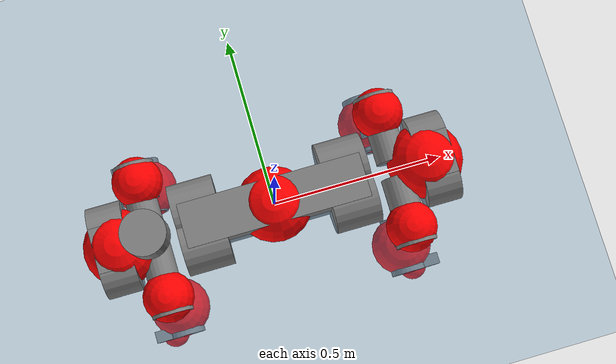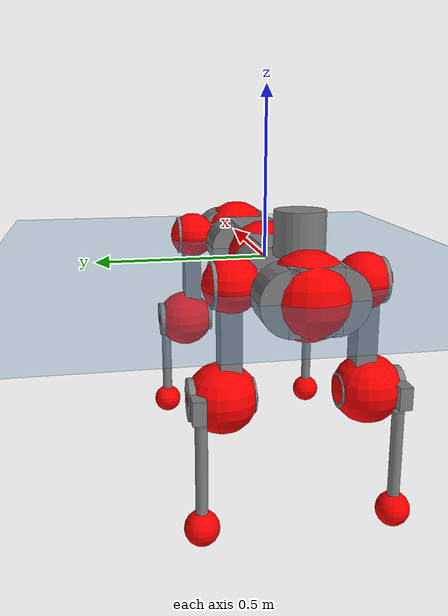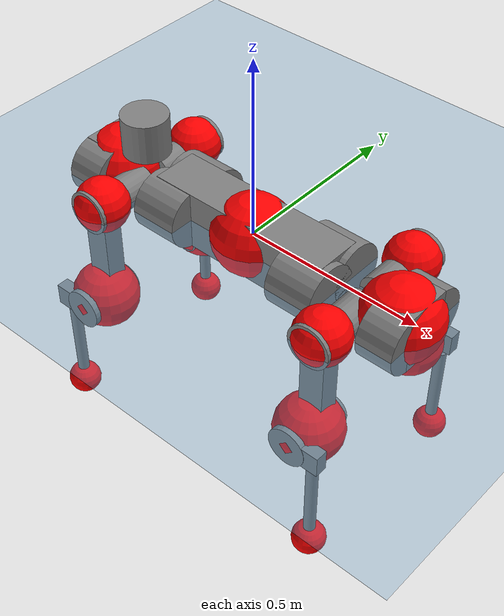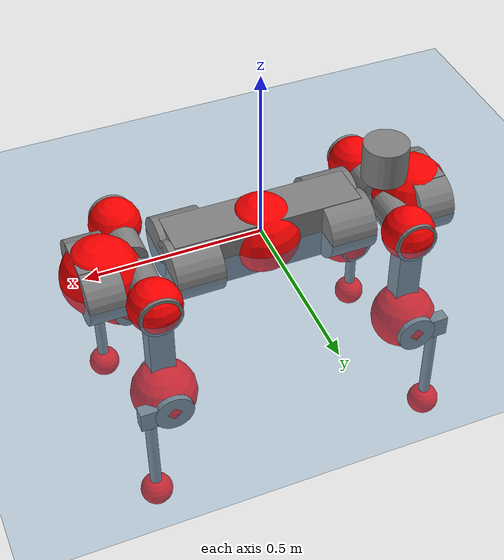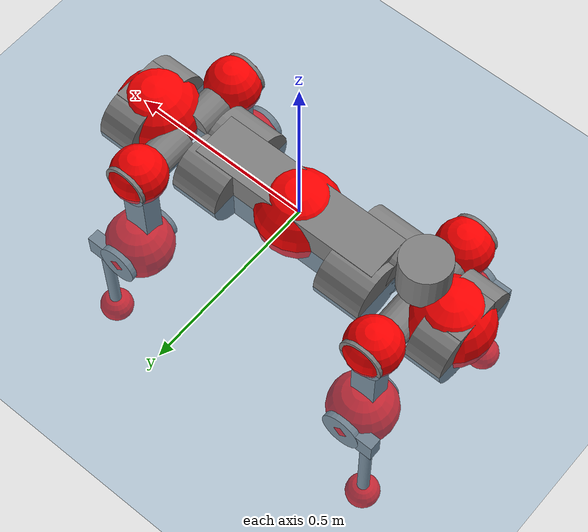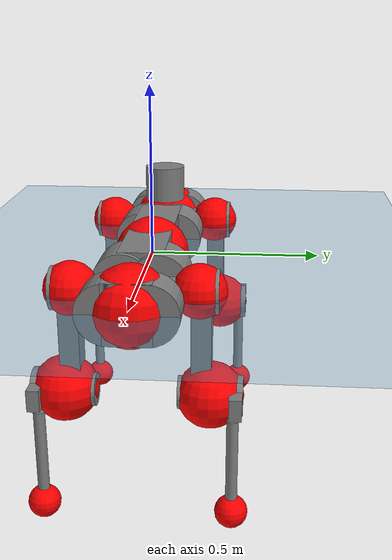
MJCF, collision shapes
<mujoco model="anymal_c">
  <compiler angle="radian" assetdir="assets" balanceinertia="true" inertiafromgeom="false"/>

  <option timestep="0.005" density="1.2" viscosity="2e-05"/>

  <size nkey="1"/>

  <visual>
    <quality shadowsize="8192"/>
    <map shadowclip="0.5"/>
  </visual>

  <default>
    <default class="/">
      <material specular="0" shininess="0.25"/>
      <geom contype="0" conaffinity="0" group="1" solref="-1000 -80"/>
      <site size="0.01 0.005 0.005" group="5"/>
      <general forcelimited="true" forcerange="-80 80" biastype="affine" gainprm="80" biasprm="0 -80 -2"/>
      <default class="anymal_c">
        <joint armature="0.01" damping="0.01" frictionloss="0.1"/>
        <default class="visual">
          <geom type="mesh" group="2"/>
          <default class="visual_zflip"/>
        </default>
        <default class="collision">
          <geom type="cylinder" group="3"/>
          <default class="foot">
            <geom size="0.03 0 0" type="sphere" condim="6" priority="1" friction="0.8 0.02 0.01" solimp="0.015 1 0.03"/>
          </default>
        </default>
      </default>
      <default class="reward_collision_sphere">
        <geom group="5" rgba="1 0 0 1"/>
      </default>
    </default>
  </default>

  <asset>
    <texture type="skybox" colorspace="auto" name="//unnamed_texture_0" builtin="gradient" rgb1="0.95 0.95 0.95" rgb2="0.95 0.95 0.95" width="100" height="600"/>
    <texture type="2d" colorspace="auto" name="texplane" builtin="checker" rgb1="0.345 0.575 0.748" rgb2="0.345 0.575 0.748" markrgb="1 1 1" width="512" height="512"/>
    <texture type="2d" colorspace="linear" name="base" file="base.png"/>
    <texture type="2d" colorspace="linear" name="top_shell" file="top_shell.png"/>
    <texture type="2d" colorspace="linear" name="bottom_shell" file="bottom_shell.png"/>
    <texture type="2d" colorspace="linear" name="remote" file="remote.png"/>
    <texture type="2d" colorspace="linear" name="hatch" file="hatch.png"/>
    <texture type="2d" colorspace="linear" name="handle" file="handle.png"/>
    <texture type="2d" colorspace="linear" name="face" file="face.png"/>
    <texture type="2d" colorspace="linear" name="battery" file="battery.png"/>
    <texture type="2d" colorspace="linear" name="lidar_cage" file="lidar_cage.png"/>
    <texture type="2d" colorspace="linear" name="depth_camera" file="depth_camera.png"/>
    <texture type="2d" colorspace="linear" name="wide_angle_camera" file="wide_angle_camera.png"/>
    <texture type="2d" colorspace="linear" name="lidar" file="lidar.png"/>
    <texture type="2d" colorspace="linear" name="drive" file="drive.png"/>
    <texture type="2d" colorspace="linear" name="hip_l" file="hip_l.png"/>
    <texture type="2d" colorspace="linear" name="shank_l" file="shank_l.png"/>
    <texture type="2d" colorspace="linear" name="foot" file="foot.png"/>
    <texture type="2d" colorspace="linear" name="thigh" file="thigh.png"/>
    <texture type="2d" colorspace="linear" name="shank_r" file="shank_r.png"/>
    <texture type="2d" colorspace="linear" name="hip_r" file="hip_r.png"/>
    <material name="MatPlane" class="/" texture="texplane" texuniform="true" texrepeat="2 2" specular="0.9" shininess="0.5"/>
    <material name="black_plastic" class="/" rgba="0.007 0.007 0.007 1"/>
    <material name="green" class="/" rgba="0.052 0.178 0.033 1"/>
    <material name="red" class="/" rgba="0.178 0.006 0.005 1"/>
    <material name="yellow" class="/" rgba="0.178 0.119 0.006 1"/>
    <material name="lwl" class="/" rgba="0.8 0.8 0.8 1"/>
    <material name="base" class="/" texture="base"/>
    <material name="top_shell" class="/" texture="top_shell"/>
    <material name="bottom_shell" class="/" texture="bottom_shell"/>
    <material name="hip_l" class="/" texture="hip_l"/>
    <material name="thigh" class="/" texture="thigh"/>
    <material name="shank_l" class="/" texture="shank_l"/>
    <material name="foot" class="/" texture="foot"/>
    <material name="hip_r" class="/" texture="hip_r"/>
    <material name="shank" class="/" texture="shank_r"/>
    <material name="hatch" class="/" texture="hatch"/>
    <material name="remote" class="/" texture="remote"/>
    <material name="handle" class="/" texture="handle"/>
    <material name="face" class="/" texture="face"/>
    <material name="depth_camera" class="/" texture="depth_camera"/>
    <material name="wide_angle_camera" class="/" texture="wide_angle_camera"/>
    <material name="battery" class="/" texture="battery"/>
    <material name="lidar_cage" class="/" texture="lidar_cage"/>
    <material name="lidar" class="/" texture="lidar"/>
    <material name="drive" class="/" texture="drive"/>
    <mesh name="base_0" class="/" file="base_0.obj"/>
    <mesh name="base_1" class="/" file="base_1.obj"/>
    <mesh name="base_2" class="/" file="base_2.obj"/>
    <mesh name="base_3" class="/" file="base_3.obj"/>
    <mesh name="base_4" class="/" file="base_4.obj"/>
    <mesh name="base_5" class="/" file="base_5.obj"/>
    <mesh name="top_shell" class="/" file="top_shell.obj"/>
    <mesh name="bottom_shell" class="/" file="bottom_shell.obj"/>
    <mesh name="remote" class="/" file="remote.obj"/>
    <mesh name="handle" class="/" file="handle.obj"/>
    <mesh name="face" class="/" file="face.obj"/>
    <mesh name="wide_angle_camera" class="/" file="wide_angle_camera.obj"/>
    <mesh name="depth_camera" class="/" file="depth_camera.obj"/>
    <mesh name="battery" class="/" file="battery.obj"/>
    <mesh name="lidar_cage" class="/" file="lidar_cage.obj"/>
    <mesh name="lidar" class="/" file="lidar.obj"/>
    <mesh name="drive" class="/" file="drive.obj"/>
    <mesh name="hip_l" class="/" file="hip_l.obj"/>
    <mesh name="thigh" class="/" file="thigh.obj"/>
    <mesh name="shank_l" class="/" file="shank_l.obj"/>
    <mesh name="foot" class="/" file="foot.obj"/>
    <mesh name="hip_r" class="/" file="hip_r.obj"/>
    <mesh name="hatch" class="/" file="hatch.obj"/>
    <mesh name="shank_r" class="/" file="shank_r.obj"/>
  </asset>

  <worldbody>
    <geom name="floor" class="/" size="100 100 0.125" type="plane" group="0" material="MatPlane"/>
    <light name="toplight_shadow" class="/" pos="0 0 5" dir="0.0990148 0.0990148 -0.990148" type="directional" ambient="0.04 0.04 0.04" diffuse="0.55 0.55 0.55" specular="0.12 0.12 0.12"/>
    <light name="toplight_fill" class="/" pos="0 0 5" dir="0.0990148 0.0990148 -0.990148" type="directional" castshadow="false" ambient="0.04 0.04 0.04" diffuse="0.3 0.3 0.3" specular="0.08 0.08 0.08"/>
    <body name="trunk" childclass="anymal_c" pos="-0.000869861 0.000318877 -0.00271189" quat="1 0.000309376 5.97266e-06 0.000407491">
      <inertial pos="-0.000464053 -0.00281878 0.0516191" quat="0.500435 0.499259 0.499526 0.500778" mass="15.6105" diaginertia="0.722403 0.138407 0.274407"/>
      <joint name="//unnamed_joint_0" type="free" armature="0" damping="0" frictionloss="0"/>
      <geom name="//unnamed_geom_1" class="visual" material="green" mesh="base_0"/>
      <geom name="//unnamed_geom_2" class="visual" material="yellow" mesh="base_1"/>
      <geom name="//unnamed_geom_3" class="visual" material="red" mesh="base_2"/>
      <geom name="//unnamed_geom_4" class="visual" material="black_plastic" mesh="base_3"/>
      <geom name="//unnamed_geom_5" class="visual" material="lwl" mesh="base_4"/>
      <geom name="//unnamed_geom_6" class="visual" material="base" mesh="base_5"/>
      <geom name="trunk_1" class="collision" size="0.2695 0.0650517 0.083638" type="box"/>
      <geom name="trunk_2" class="collision" size="0.083638 0.067375" pos="0.220863 0.0514558 0" quat="0.707107 0 0.707107 0"/>
      <geom name="trunk_3" class="collision" size="0.083638 0.067375" pos="-0.220863 0.0514558 0" quat="0.707107 0 0.707107 0"/>
      <geom name="trunk_4" class="collision" size="0.083638 0.067375" pos="0.220863 -0.0514558 0" quat="0.707107 0 0.707107 0"/>
      <geom name="trunk_5" class="collision" size="0.083638 0.067375" pos="-0.220863 -0.0514558 0" quat="0.707107 0 0.707107 0"/>
      <geom name="//unnamed_geom_12" class="visual" material="top_shell" mesh="top_shell"/>
      <geom name="//unnamed_geom_13" class="visual" material="bottom_shell" mesh="bottom_shell"/>
      <geom name="//unnamed_geom_14" class="visual" material="remote" mesh="remote"/>
      <geom name="//unnamed_geom_15" class="visual" material="handle" mesh="handle"/>
      <geom name="//unnamed_geom_16" class="visual" pos="0.420909 0 0" quat="1 0 0 0" material="face" mesh="face"/>
      <geom name="trunk_6" class="collision" size="0.0511121 0.0650517 0.083638" pos="0.47676 0 0" type="box"/>
      <geom name="//unnamed_geom_18" class="collision" size="0.083638 0.0511121" pos="0.47676 0.0514558 0" quat="0.707107 0 0.707107 0"/>
      <geom name="//unnamed_geom_19" class="collision" size="0.083638 0.0511121" pos="0.47676 -0.0514558 0" quat="0.707107 0 0.707107 0"/>
      <geom name="//unnamed_geom_20" class="visual" pos="0.468789 0 -0.0304583" quat="0.965926 0 0.258819 0" material="depth_camera" mesh="depth_camera"/>
      <geom name="//unnamed_geom_21" class="visual" pos="0.520933 0 0.0155297" material="wide_angle_camera" mesh="wide_angle_camera"/>
      <geom name="//unnamed_geom_22" class="visual_zflip" pos="-0.420909 0 0" quat="0 0 0 1" material="face" mesh="face"/>
      <geom name="trunk_7" class="collision" size="0.0511121 0.0650517 0.083638" pos="-0.47676 0 0" quat="0 0 0 1" type="box"/>
      <geom name="//unnamed_geom_24" class="collision" size="0.083638 0.0511121" pos="-0.47676 -0.0514558 0" quat="0 -0.707107 0 0.707107"/>
      <geom name="//unnamed_geom_25" class="collision" size="0.083638 0.0511121" pos="-0.47676 0.0514558 0" quat="0 -0.707107 0 0.707107"/>
      <geom name="//unnamed_geom_26" class="visual" pos="-0.468789 0 -0.0304583" quat="0 -0.258819 0 0.965926" material="depth_camera" mesh="depth_camera"/>
      <geom name="//unnamed_geom_27" class="visual_zflip" pos="-0.520933 0 0.0155297" quat="0 0 0 1" material="wide_angle_camera" mesh="wide_angle_camera"/>
      <geom name="//unnamed_geom_28" class="visual" material="battery" mesh="battery"/>
      <geom name="//unnamed_geom_29" class="visual" pos="0 0.0525262 0.0299694" quat="0.683013 -0.183013 0.183013 0.683013" material="depth_camera" mesh="depth_camera"/>
      <geom name="//unnamed_geom_30" class="visual" pos="0 -0.0525262 0.0299694" quat="0.683013 0.183013 0.183013 -0.683013" material="depth_camera" mesh="depth_camera"/>
      <geom name="//unnamed_geom_31" class="visual" pos="-0.369629 0 0.0762479" quat="1 0 0 0" material="lidar_cage" mesh="lidar_cage"/>
      <geom name="trunk_8" class="collision" size="0.0650517 0.0557586" pos="-0.369629 0 0.138491"/>
      <geom name="//unnamed_geom_33" class="visual" pos="-0.369629 -0.000110154 0.147516" quat="0.707107 0 0 -0.707107" material="lidar" mesh="lidar"/>
      <geom name="//unnamed_geom_34" class="visual" pos="0.304537 0.076556 -5.21476e-09" quat="0.258819 0.965926 0 0" material="drive" mesh="drive"/>
      <geom name="//unnamed_geom_35" class="visual" pos="0.304537 -0.076556 5.21476e-09" quat="0.258819 -0.965926 0 0" material="drive" mesh="drive"/>
      <geom name="//unnamed_geom_36" class="visual" pos="-0.304537 0.076556 5.21476e-09" quat="0 0 0.965926 -0.258819" material="drive" mesh="drive"/>
      <geom name="//unnamed_geom_37" class="visual" pos="-0.304537 -0.076556 -5.21476e-09" quat="0 0 -0.965926 -0.258819" material="drive" mesh="drive"/>
      <geom name="//unnamed_geom_38" class="visual" pos="0.117794 0 0.0757292" quat="1 0 0 0" material="hatch" mesh="hatch"/>
      <geom name="//unnamed_geom_39" class="reward_collision_sphere" size="0.111517"/>
      <geom name="//unnamed_geom_40" class="reward_collision_sphere" size="0.111517" pos="0.456958 0 0"/>
      <geom name="//unnamed_geom_41" class="reward_collision_sphere" size="0.111517" pos="-0.456958 0 0"/>
      <site name="imu" pos="0.242298 0.0114799 0.0614745" size="0.00929311"/>
      <camera name="track" pos="0 -1.47017 0" quat="0.707107 0.707107 0 0" mode="trackcom"/>
      <camera name="ego_camera" pos="0.456958 0 -0.0414954" quat="-0.5 -0.5 0.5 0.5"/>
      <body name="LF_HIP" pos="0.304058 0.0772503 -0.000113737" quat="0.259013 0.965873 0.000329855 0.000963634">
        <inertial pos="0.0602111 -0.012774 -0.00767029" quat="-0.126797 0.70985 -0.146881 0.677097" mass="2.16305" diaginertia="0.00613682 0.00104993 0.00398041"/>
        <joint name="LF_HAA" pos="0 0 0" axis="0.999861 0.00906448 0.0140147" range="-0.707 0.529889" armature="0.0104032" damping="0.00101292" frictionloss="0.0970484"/>
        <geom name="//unnamed_geom_42" class="visual" pos="0 -0.000306761 5.03852e-05" quat="0.258819 -0.965926 0 0" material="hip_l" mesh="hip_l"/>
        <geom name="//unnamed_geom_43" class="visual" pos="0.0608262 -0.0701197 -0.0427196" quat="0.183013 -0.683013 0.683013 0.183013" material="drive" mesh="drive"/>
        <geom name="//unnamed_geom_44" class="collision" size="0.0464655 0.0650517" pos="0.0608262 -0.00879144 -0.00716315" quat="-0.353553 -0.612372 0.612372 -0.353553"/>
        <body name="LF_THIGH" pos="0.0610043 -0.0534998 -0.0443703" quat="0.182953 -0.682665 0.683481 0.182622">
          <inertial pos="0.0331476 0.000449642 -0.252262" quat="0.993179 -0.00541832 -0.080492 0.0841858" mass="2.52424" diaginertia="0.0314232 0.00638727 0.00505618"/>
          <joint name="LF_HFE" pos="0 0 0" axis="0.999907 -0.00503061 0.0126776" stiffness="0.000138309" range="-3.14296 3.1203" armature="0.00887452" damping="0.00730281" frictionloss="0.0804602"/>
          <geom name="//unnamed_geom_45" class="visual" pos="0.00557846 8.79035e-06 0" quat="0.707107 0 0 -0.707107" material="thigh" mesh="thigh"/>
          <geom name="//unnamed_geom_46" class="collision" size="0.0604052 0.0371724" pos="0.0406185 0 0" quat="0.5 0.5 -0.5 -0.5"/>
          <geom name="//unnamed_geom_47" class="collision" size="0.0348491 0.0278793 0.131325" pos="0.0304639 0 -0.146597" quat="0.707107 0 0 -0.707107" type="box"/>
          <geom name="//unnamed_geom_48" class="visual" pos="0.101851 0 -0.295655" quat="1 0 0 0" material="drive" mesh="drive"/>
          <geom name="//unnamed_geom_49" class="collision" size="0.0464655 0.0650517" pos="0.0307685 0 -0.295655" quat="0.707107 0 0.707107 0"/>
          <geom name="//unnamed_geom_50" class="reward_collision_sphere" size="0.0743449" pos="0.0253866 0 0"/>
          <body name="LF_SHANK" pos="0.105313 -0.00335252 -0.29808" quat="0.999999 0.00108465 0.000894835 -0.000382753">
            <inertial pos="0.00610443 -0.0449746 -0.0833336" quat="0.992923 -0.115978 -0.00231125 -0.0254456" mass="0.460069" diaginertia="0.0106743 0.00197209 0.00131913"/>
            <joint name="LF_KFE" pos="0 0 0" axis="0.999997 0.00146485 -0.00178718" stiffness="0.000604316" range="-3.19337 3.157" armature="0.0102053" damping="0" frictionloss="0.104642"/>
            <geom name="//unnamed_geom_51" class="visual" pos="0.00181901 0.00969908 0" quat="0.707107 0 0 -0.707107" material="shank_l" mesh="shank_l"/>
            <geom name="LF_kfe_act" class="collision" size="0.0557586 0.0185862" pos="0.0203093 0 0" quat="0.5 0.5 -0.5 -0.5"/>
            <geom name="//unnamed_geom_53" class="collision" size="0.0534344 0.0313642 0.0176569" pos="0.0203093 -0.0422665 0" quat="0.5 0.5 -0.5 -0.5" type="box"/>
            <geom name="//unnamed_geom_54" class="visual" pos="0.0132514 -0.0615249 -0.350605" quat="0.382683 0 0 -0.92388" material="foot" mesh="foot"/>
            <geom name="LF_calf" class="collision" size="0.0162629 0.131267" pos="0.0132518 -0.0646505 -0.175303" quat="0.707107 0 0 -0.707107"/>
            <geom name="LF_foot" class="foot" size="0.0281439" pos="0.0132518 -0.0646505 -0.327264" quat="0.707107 0 0 -0.707107"/>
            <geom name="//unnamed_geom_57" class="reward_collision_sphere" size="0.0929311" pos="-0.0507732 0 0"/>
            <geom name="//unnamed_geom_58" class="reward_collision_sphere" size="0.0464655" pos="0.0132518 -0.0646505 -0.327264"/>
            <site name="LF_foot" class="foot" pos="0.0132518 -0.0646505 -0.327264" quat="0.707107 0 0 -0.707107" size="0.00929311"/>
          </body>
        </body>
      </body>
      <body name="RF_HIP" pos="0.30273 -0.0779225 -0.00112974" quat="0.258838 -0.965921 -2.04412e-05 -0.000113373">
        <inertial pos="0.0603597 0.0127846 -0.00954637" quat="0.137162 0.677581 0.127645 0.71118" mass="2.30961" diaginertia="0.00640269 0.0011194 0.00406961"/>
        <joint name="RF_HAA" pos="0 0 0" axis="0.99998 -0.00261958 -0.00575674" range="-0.543922 0.703037" armature="0.00808278" damping="0.00777243" frictionloss="0.0805288"/>
        <geom name="//unnamed_geom_59" class="visual" pos="0 0.000306758 5.03851e-05" quat="0.258819 0.965926 0 0" material="hip_r" mesh="hip_r"/>
        <geom name="//unnamed_geom_60" class="visual" pos="0.0608262 0.0701197 -0.0427196" quat="0.183013 0.683013 0.683013 -0.183013" material="drive" mesh="drive"/>
        <geom name="//unnamed_geom_61" class="collision" size="0.0464655 0.0650517" pos="0.0608262 0.00879144 -0.00716315" quat="-0.353553 0.612372 0.612372 0.353553"/>
        <body name="RF_THIGH" pos="0.0599087 0.0559684 -0.0457713" quat="0.182964 0.6831 0.682997 -0.182792">
          <inertial pos="0.0317119 -0.00112239 -0.253575" quat="0.991407 -0.0136999 -0.0852571 0.0982642" mass="2.30586" diaginertia="0.0311551 0.00638633 0.00495085"/>
          <joint name="RF_HFE" pos="0 0 0" axis="0.999949 -0.00497695 -0.00878486" stiffness="0.00516738" range="-3.10017 3.19382" armature="0.00933827" damping="0" frictionloss="0.100553"/>
          <geom name="//unnamed_geom_62" class="visual" pos="0.00557846 8.79035e-06 0" quat="0.707107 0 0 -0.707107" material="thigh" mesh="thigh"/>
          <geom name="//unnamed_geom_63" class="collision" size="0.0604052 0.0371724" pos="0.0406185 0 0" quat="0.5 0.5 0.5 0.5"/>
          <geom name="//unnamed_geom_64" class="collision" size="0.0348491 0.0278793 0.131325" pos="0.0304639 0 -0.146597" quat="0.707107 0 0 0.707107" type="box"/>
          <geom name="//unnamed_geom_65" class="visual" pos="0.101851 0 -0.295655" quat="1 0 0 0" material="drive" mesh="drive"/>
          <geom name="//unnamed_geom_66" class="collision" size="0.0464655 0.0650517" pos="0.0307685 0 -0.295655" quat="0.707107 0 0.707107 0"/>
          <geom name="//unnamed_geom_67" class="reward_collision_sphere" size="0.0743449" pos="0.0253866 0 0"/>
          <body name="RF_SHANK" pos="0.103952 -0.00208438 -0.294271" quat="1 4.55779e-05 0.000328226 8.28503e-05">
            <inertial pos="0.00537099 0.0454166 -0.0809643" quat="0.992009 0.124578 0.00376673 0.019613" mass="0.479966" diaginertia="0.0107095 0.00191921 0.00134283"/>
            <joint name="RF_KFE" pos="0 0 0" axis="0.99999 -0.00394884 0.00229723" range="-3.17767 3.18576" armature="0.00913392" damping="0.00288315" frictionloss="0.0822922"/>
            <geom name="//unnamed_geom_68" class="visual" pos="0.001819 -0.00969906 0" quat="0.707107 0 0 0.707107" material="shank" mesh="shank_r"/>
            <geom name="RF_kfe_act" class="collision" size="0.0557586 0.0185862" pos="0.0203093 0 0" quat="0.5 0.5 0.5 0.5"/>
            <geom name="//unnamed_geom_70" class="collision" size="0.0534344 0.0313642 0.0176569" pos="0.0203093 0.0422665 0" quat="0.5 0.5 0.5 0.5" type="box"/>
            <geom name="//unnamed_geom_71" class="visual" pos="0.0132522 0.0615249 -0.350605" quat="0.382683 0 0 0.92388" material="foot" mesh="foot"/>
            <geom name="RF_calf" class="collision" size="0.0162629 0.131267" pos="0.0132518 0.0646505 -0.175303" quat="0.707107 0 0 0.707107"/>
            <geom name="RF_foot" class="foot" size="0.0268643" pos="0.0132518 0.0646505 -0.327264" quat="0.707107 0 0 0.707107"/>
            <geom name="//unnamed_geom_74" class="reward_collision_sphere" size="0.0929311" pos="-0.0507732 0 0"/>
            <geom name="//unnamed_geom_75" class="reward_collision_sphere" size="0.0464655" pos="0.0132518 0.0646505 -0.327264"/>
            <site name="RF_foot" class="foot" pos="0.0132518 0.0646505 -0.327264" quat="0.707107 0 0 0.707107" size="0.00929311"/>
          </body>
        </body>
      </body>
      <body name="LH_HIP" pos="-0.306399 0.0780707 0.000318287" quat="1.54657e-05 8.83321e-06 0.965928 -0.25881">
        <inertial pos="0.0592325 0.0135904 -0.00902942" quat="0.13243 0.67064 0.129477 0.71829" mass="2.22963" diaginertia="0.00605884 0.00104804 0.00368777"/>
        <joint name="LH_HAA" pos="0 0 0" axis="0.999986 -0.00483688 -0.00228736" range="-0.478457 0.689887" armature="0.00792817" damping="0.000144598" frictionloss="0.0934208"/>
        <geom name="//unnamed_geom_76" class="visual" pos="0 0.000306758 5.03851e-05" quat="-0.258819 -0.965926 0 0" material="hip_r" mesh="hip_r"/>
        <geom name="//unnamed_geom_77" class="visual" pos="0.0608262 0.0701197 -0.0427196" quat="0.183013 0.683013 0.683013 -0.183013" material="drive" mesh="drive"/>
        <geom name="//unnamed_geom_78" class="collision" size="0.0464655 0.0650517" pos="0.0608262 0.00879144 -0.00716315" quat="-0.353553 0.612372 0.612372 0.353553"/>
        <body name="LH_THIGH" pos="0.0574993 0.0513987 -0.0439045" quat="0.182912 0.68299 0.683033 -0.183121">
          <inertial pos="0.0313844 0.00269616 -0.253605" quat="0.992467 -0.00808644 -0.0829051 0.0898355" mass="2.45341" diaginertia="0.0326154 0.00621023 0.00502977"/>
          <joint name="LH_HFE" pos="0 0 0" axis="0.999928 -0.00878566 -0.00813112" stiffness="0.00727239" range="-3.1381 3.15974" armature="0.00839822" damping="0.000489204" frictionloss="0.096204"/>
          <geom name="//unnamed_geom_79" class="visual" pos="0.00557846 8.79035e-06 0" quat="0.707107 0 0 -0.707107" material="thigh" mesh="thigh"/>
          <geom name="//unnamed_geom_80" class="collision" size="0.0604052 0.0371724" pos="0.0406185 0 0" quat="0.5 0.5 -0.5 -0.5"/>
          <geom name="//unnamed_geom_81" class="collision" size="0.0348491 0.0278793 0.131325" pos="0.0304639 0 -0.146597" quat="0.707107 0 0 -0.707107" type="box"/>
          <geom name="//unnamed_geom_82" class="visual" pos="0.101851 0 -0.295655" quat="1 0 0 0" material="drive" mesh="drive"/>
          <geom name="//unnamed_geom_83" class="collision" size="0.0464655 0.0650517" pos="0.0307685 0 -0.295655" quat="0.707107 0 0.707107 0"/>
          <geom name="//unnamed_geom_84" class="reward_collision_sphere" size="0.0743449" pos="0.0253866 0 0"/>
          <body name="LH_SHANK" pos="0.0989092 -0.000734201 -0.297161" quat="1 0.000688186 -0.000370935 -0.000149826">
            <inertial pos="0.0056451 0.0447015 -0.0839741" quat="0.992619 0.116493 0.000888514 0.0337178" mass="0.474811" diaginertia="0.0109387 0.0019639 0.00131548"/>
            <joint name="LH_KFE" pos="0 0 0" axis="0.999773 0.0142389 -0.0158672" range="-3.15925 3.14079" armature="0.00809662" damping="0.00646205" frictionloss="0.105024"/>
            <geom name="//unnamed_geom_85" class="visual" pos="0.001819 -0.00969906 0" quat="-0.707107 0 0 -0.707107" material="shank" mesh="shank_r"/>
            <geom name="LH_kfe_act" class="collision" size="0.0557586 0.0185862" pos="0.0203093 0 0" quat="0.5 0.5 -0.5 -0.5"/>
            <geom name="//unnamed_geom_87" class="collision" size="0.0534344 0.0313642 0.0176569" pos="0.0203093 0.0422665 0" quat="0.5 0.5 -0.5 -0.5" type="box"/>
            <geom name="//unnamed_geom_88" class="visual" pos="0.0132522 0.0615249 -0.350605" quat="-0.382683 0 0 -0.92388" material="foot" mesh="foot"/>
            <geom name="LH_calf" class="collision" size="0.0162629 0.131267" pos="0.0132518 0.0646505 -0.175303" quat="0.707107 0 0 -0.707107"/>
            <geom name="LH_foot" class="foot" size="0.0320233" pos="0.0132518 0.0646505 -0.327264" quat="0.707107 0 0 -0.707107"/>
            <geom name="//unnamed_geom_91" class="reward_collision_sphere" size="0.0929311" pos="-0.0507732 0 0"/>
            <geom name="//unnamed_geom_92" class="reward_collision_sphere" size="0.0464655" pos="0.0132518 0.0646505 -0.327264"/>
            <site name="LH_foot" class="foot" pos="0.0132518 0.0646505 -0.327264" quat="0.707107 0 0 -0.707107" size="0.00929311"/>
          </body>
        </body>
      </body>
      <body name="RH_HIP" pos="-0.304417 -0.0794821 -0.000648956" quat="0.000571002 0.000978043 -0.966111 -0.258125">
        <inertial pos="0.0550119 -0.0118484 -0.0060912" quat="-0.127518 0.709819 -0.135277 0.679409" mass="2.18165" diaginertia="0.00620276 0.0010283 0.00375013"/>
        <joint name="RH_HAA" pos="0 0 0" axis="0.999998 0.00156737 0.00115127" range="-0.77902 0.53592" armature="0.00917899" damping="0" frictionloss="0.0931981"/>
        <geom name="//unnamed_geom_93" class="visual" pos="0 -0.000306761 5.03852e-05" quat="-0.258819 0.965926 0 0" material="hip_l" mesh="hip_l"/>
        <geom name="//unnamed_geom_94" class="visual" pos="0.0608262 -0.0701197 -0.0427196" quat="-0.183013 0.683013 -0.683013 -0.183013" material="drive" mesh="drive"/>
        <geom name="//unnamed_geom_95" class="collision" size="0.0464655 0.0650517" pos="0.0608262 -0.00879144 -0.00716315" quat="0.353553 0.612372 -0.612372 0.353553"/>
        <body name="RH_THIGH" pos="0.059915 -0.0549868 -0.0420417" quat="-0.183063 0.683211 -0.682791 -0.183051">
          <inertial pos="0.0344374 0.000400924 -0.255685" quat="0.993216 -0.00523524 -0.0800657 0.084162" mass="2.34084" diaginertia="0.0308122 0.00627361 0.00487359"/>
          <joint name="RH_HFE" pos="0 0 0" axis="0.999941 -0.0051411 -0.00959201" stiffness="0.00201172" range="-3.15028 3.14801" armature="0.00875004" damping="0.00412112" frictionloss="0.093956"/>
          <geom name="//unnamed_geom_96" class="visual" pos="0.00557846 8.79035e-06 0" quat="0.707107 0 0 -0.707107" material="thigh" mesh="thigh"/>
          <geom name="//unnamed_geom_97" class="collision" size="0.0604052 0.0371724" pos="0.0406185 0 0" quat="0.5 0.5 0.5 0.5"/>
          <geom name="//unnamed_geom_98" class="collision" size="0.0348491 0.0278793 0.131325" pos="0.0304639 0 -0.146597" quat="0.707107 0 0 0.707107" type="box"/>
          <geom name="//unnamed_geom_99" class="visual" pos="0.101851 0 -0.295655" quat="1 0 0 0" material="drive" mesh="drive"/>
          <geom name="//unnamed_geom_100" class="collision" size="0.0464655 0.0650517" pos="0.0307685 0 -0.295655" quat="0.707107 0 0.707107 0"/>
          <geom name="//unnamed_geom_101" class="reward_collision_sphere" size="0.0743449" pos="0.0253866 0 0"/>
          <body name="RH_SHANK" pos="0.0993153 0.00131206 -0.294904" quat="1 8.6568e-06 0.000244345 -0.000741602">
            <inertial pos="0.00470913 -0.04506 -0.0841364" quat="0.993636 -0.108509 -0.0126476 -0.0274558" mass="0.461773" diaginertia="0.0105713 0.00203329 0.00133172"/>
            <joint name="RH_KFE" pos="0 0 0" axis="0.999982 -0.00261371 0.00541191" stiffness="0.00951157" range="-3.10826 3.12801" armature="0.00823989" damping="0.00812616" frictionloss="0.0922878"/>
            <geom name="//unnamed_geom_102" class="visual" pos="0.00181901 0.00969908 0" quat="0.707107 0 0 -0.707107" material="shank_l" mesh="shank_l"/>
            <geom name="RH_kfe_act" class="collision" size="0.0557586 0.0185862" pos="0.0203093 0 0" quat="0.5 0.5 0.5 0.5"/>
            <geom name="//unnamed_geom_104" class="collision" size="0.0534344 0.0313642 0.0176569" pos="0.0203093 -0.0422665 0" quat="0.5 0.5 0.5 0.5" type="box"/>
            <geom name="//unnamed_geom_105" class="visual" pos="0.0132514 -0.0615249 -0.350605" quat="0.382683 0 0 -0.92388" material="foot" mesh="foot"/>
            <geom name="RH_calf" class="collision" size="0.0162629 0.131267" pos="0.0132518 -0.0646505 -0.175303" quat="0.707107 0 0 0.707107"/>
            <geom name="RH_foot" class="foot" size="0.0231774" pos="0.0132518 -0.0646505 -0.327264" quat="0.707107 0 0 0.707107"/>
            <geom name="//unnamed_geom_108" class="reward_collision_sphere" size="0.0929311" pos="-0.0507732 0 0"/>
            <geom name="//unnamed_geom_109" class="reward_collision_sphere" size="0.0464655" pos="0.0132518 -0.0646505 -0.327264"/>
            <site name="RH_foot" class="foot" pos="0.0132518 -0.0646505 -0.327264" quat="0.707107 0 0 0.707107" size="0.00929311"/>
          </body>
        </body>
      </body>
    </body>
  </worldbody>

  <contact>
    <pair class="/" geom1="floor" geom2="LF_foot" name="//unnamed_contact_0"/>
    <pair class="/" geom1="floor" geom2="RF_foot" name="//unnamed_contact_1"/>
    <pair class="/" geom1="floor" geom2="LH_foot" name="//unnamed_contact_2"/>
    <pair class="/" geom1="floor" geom2="RH_foot" name="//unnamed_contact_3"/>
  </contact>

  <actuator>
    <general name="LF_HAA" class="/" joint="LF_HAA" forcerange="-78.1333 78.1333" gainprm="75.48" biasprm="0 -75.48 -1.761"/>
    <general name="LF_HFE" class="/" joint="LF_HFE" forcerange="-68.4564 68.4564" gainprm="75.48" biasprm="0 -75.48 -1.761"/>
    <general name="LF_KFE" class="/" joint="LF_KFE" forcerange="-75.8807 75.8807" gainprm="75.48" biasprm="0 -75.48 -1.761"/>
    <general name="RF_HAA" class="/" joint="RF_HAA" forcerange="-68.4731 68.4731" gainprm="75.48" biasprm="0 -75.48 -1.761"/>
    <general name="RF_HFE" class="/" joint="RF_HFE" forcerange="-81.6172 81.6172" gainprm="75.48" biasprm="0 -75.48 -1.761"/>
    <general name="RF_KFE" class="/" joint="RF_KFE" forcerange="-67.0045 67.0045" gainprm="75.48" biasprm="0 -75.48 -1.761"/>
    <general name="LH_HAA" class="/" joint="LH_HAA" forcerange="-74.8718 74.8718" gainprm="75.48" biasprm="0 -75.48 -1.761"/>
    <general name="LH_HFE" class="/" joint="LH_HFE" forcerange="-67.1456 67.1456" gainprm="75.48" biasprm="0 -75.48 -1.761"/>
    <general name="LH_KFE" class="/" joint="LH_KFE" forcerange="-76.9301 76.9301" gainprm="75.48" biasprm="0 -75.48 -1.761"/>
    <general name="RH_HAA" class="/" joint="RH_HAA" forcerange="-74.3037 74.3037" gainprm="75.48" biasprm="0 -75.48 -1.761"/>
    <general name="RH_HFE" class="/" joint="RH_HFE" forcerange="-68.494 68.494" gainprm="75.48" biasprm="0 -75.48 -1.761"/>
    <general name="RH_KFE" class="/" joint="RH_KFE" forcerange="-82.5324 82.5324" gainprm="75.48" biasprm="0 -75.48 -1.761"/>
  </actuator>

  <sensor>
    <gyro site="imu" name="imu_angular_velocity"/>
    <velocimeter site="imu" name="imu_linear_velocity"/>
    <framelinvel objtype="site" objname="LF_foot" name="LF_foot_global_linear_velocity"/>
    <framelinvel objtype="site" objname="RF_foot" name="RF_foot_global_linear_velocity"/>
    <framelinvel objtype="site" objname="LH_foot" name="LH_foot_global_linear_velocity"/>
    <framelinvel objtype="site" objname="RH_foot" name="RH_foot_global_linear_velocity"/>
  </sensor>

  <keyframe>
    <key name="home" qpos="0 0 0.55 1 0 0 0 0 0.4 -0.8 0 -0.4 0.8 0 -0.4 0.8 0 0.4 -0.8"/>
  </keyframe>
</mujoco>
